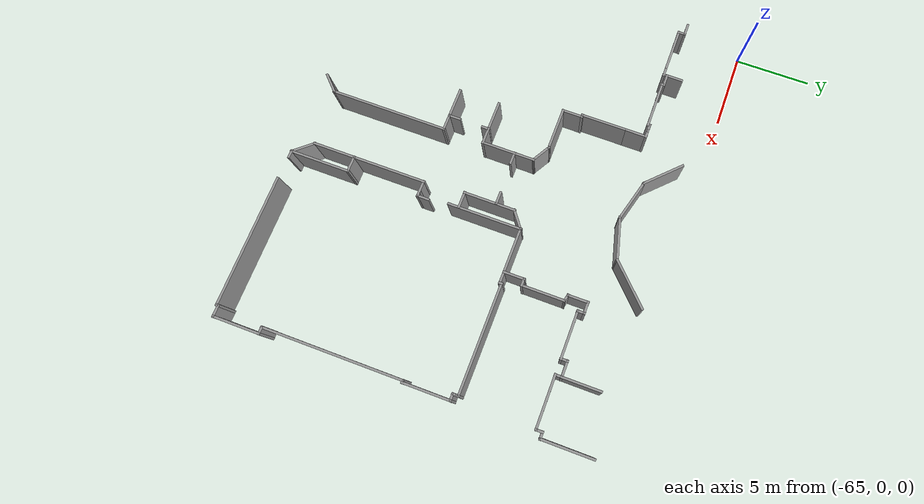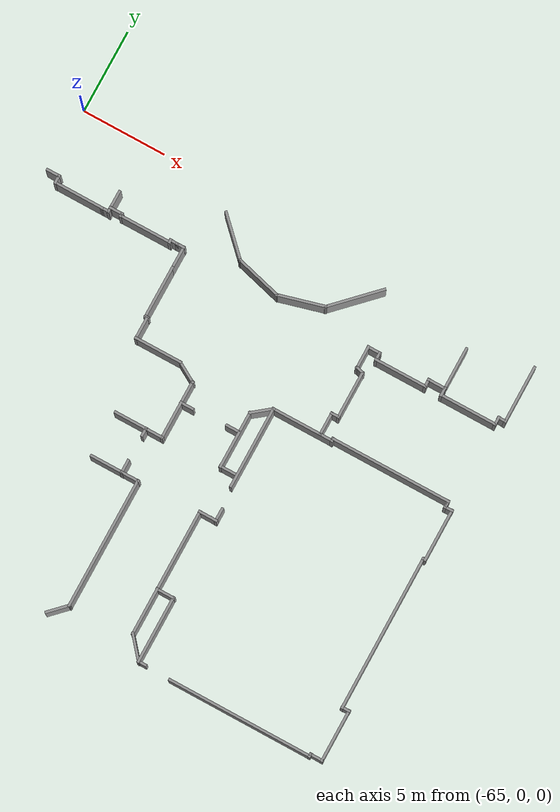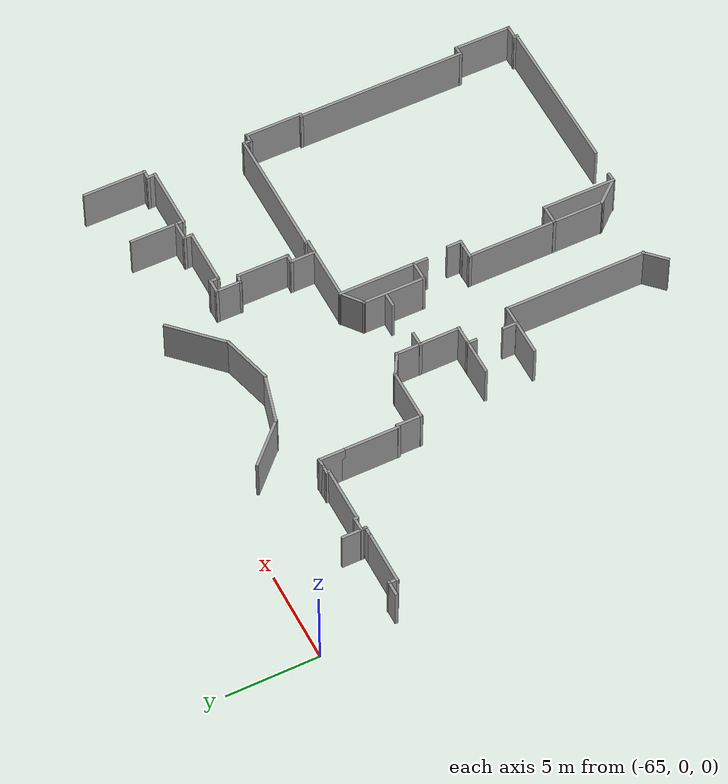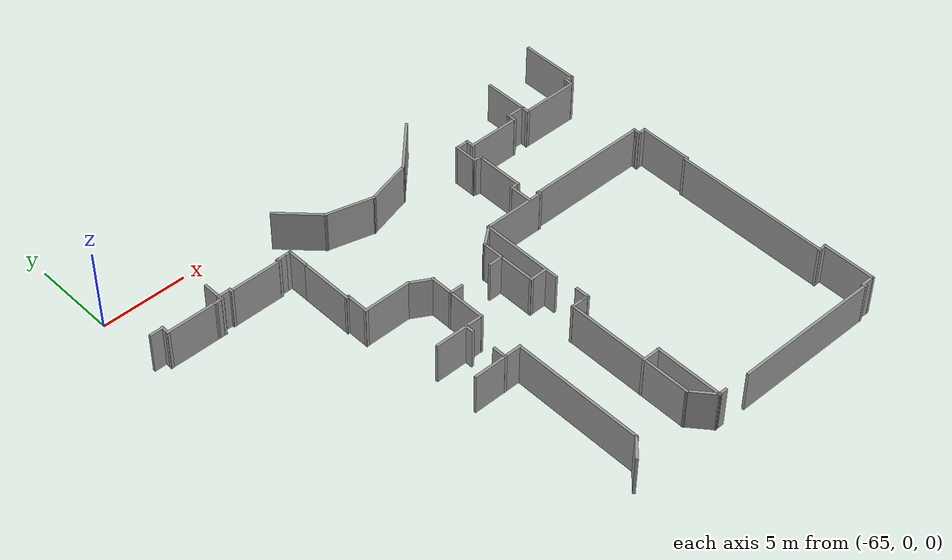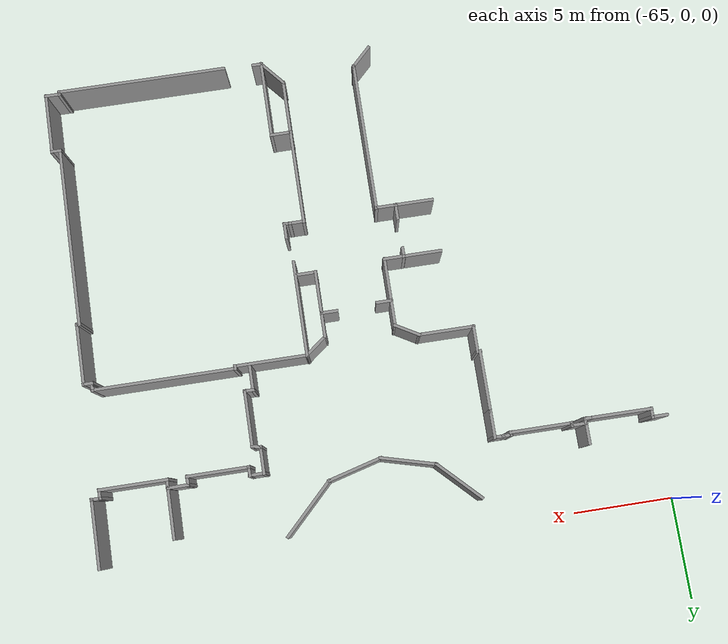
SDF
<sdf version="1.7">
 <model name="TD_n1">
  <pose>-8.28511 -2.84735 0 0 -0 0</pose>
  <link name="Wall_0">
   <collision name="Wall_0_Collision">
    <geometry><box><size>3.77 0.15 2.5</size></box></geometry>
    <pose>0 0 1.25 0 -0 0</pose>
   </collision>
   <visual name="Wall_0_Visual">
    <pose>0 0 1.25 0 -0 0</pose>
    <geometry><box><size>3.77 0.15 2.5</size></box></geometry>
    <material>
     <script><uri>file://media/materials/scripts/gazebo.material</uri><name>Gazebo/Grey</name></script>
     <ambient>1 1 1 1</ambient>
    </material>
    <meta><layer>0</layer></meta>
   </visual>
   <pose>-37.8133 -6.80732 0 0 -0 0</pose>
  </link>
  <link name="Wall_1">
   <collision name="Wall_1_Collision">
    <geometry><box><size>0.29 0.15 2.5</size></box></geometry>
    <pose>0 0 1.25 0 -0 0</pose>
   </collision>
   <visual name="Wall_1_Visual">
    <pose>0 0 1.25 0 -0 0</pose>
    <geometry><box><size>0.29 0.15 2.5</size></box></geometry>
    <material>
     <script><uri>file://media/materials/scripts/gazebo.material</uri><name>Gazebo/Grey</name></script>
     <ambient>1 1 1 1</ambient>
    </material>
    <meta><layer>0</layer></meta>
   </visual>
   <pose>-36.0153 -6.74932 0 0 -0 1.5708</pose>
  </link>
  <link name="Wall_10">
   <collision name="Wall_10_Collision">
    <geometry><box><size>0.58 0.15 2.5</size></box></geometry>
    <pose>0 0 1.25 0 -0 0</pose>
   </collision>
   <visual name="Wall_10_Visual">
    <pose>0 0 1.25 0 -0 0</pose>
    <geometry><box><size>0.58 0.15 2.5</size></box></geometry>
    <material>
     <script><uri>file://media/materials/scripts/gazebo.material</uri><name>Gazebo/Grey</name></script>
     <ambient>1 1 1 1</ambient>
    </material>
    <meta><layer>0</layer></meta>
   </visual>
   <pose>-28.4463 -19.1613 0 0 -0 0</pose>
  </link>
  <link name="Wall_102">
   <collision name="Wall_102_Collision">
    <geometry><box><size>2.9 0.15 2.5</size></box></geometry>
    <pose>0 0 1.25 0 -0 0</pose>
   </collision>
   <visual name="Wall_102_Visual">
    <pose>0 0 1.25 0 -0 0</pose>
    <geometry><box><size>2.9 0.15 2.5</size></box></geometry>
    <material>
     <script><uri>file://media/materials/scripts/gazebo.material</uri><name>Gazebo/Grey</name></script>
     <ambient>1 1 1 1</ambient>
    </material>
    <meta><layer>0</layer></meta>
   </visual>
   <pose>-43.7442 -0.919881 0 0 -0 2.87979</pose>
  </link>
  <link name="Wall_103">
   <collision name="Wall_103_Collision">
    <geometry><box><size>2.9 0.15 2.5</size></box></geometry>
    <pose>0 0 1.25 0 -0 0</pose>
   </collision>
   <visual name="Wall_103_Visual">
    <pose>0 0 1.25 0 -0 0</pose>
    <geometry><box><size>2.9 0.15 2.5</size></box></geometry>
    <material>
     <script><uri>file://media/materials/scripts/gazebo.material</uri><name>Gazebo/Grey</name></script>
     <ambient>1 1 1 1</ambient>
    </material>
    <meta><layer>0</layer></meta>
   </visual>
   <pose>-46.0245 0.396676 0 0 -0 2.35619</pose>
  </link>
  <link name="Wall_11">
   <collision name="Wall_11_Collision">
    <geometry><box><size>3.19 0.15 2.5</size></box></geometry>
    <pose>0 0 1.25 0 -0 0</pose>
   </collision>
   <visual name="Wall_11_Visual">
    <pose>0 0 1.25 0 -0 0</pose>
    <geometry><box><size>3.19 0.15 2.5</size></box></geometry>
    <material>
     <script><uri>file://media/materials/scripts/gazebo.material</uri><name>Gazebo/Grey</name></script>
     <ambient>1 1 1 1</ambient>
    </material>
    <meta><layer>0</layer></meta>
   </visual>
   <pose>-28.2433 -20.6693 0 0 -0 -1.5708</pose>
  </link>
  <link name="Wall_112">
   <collision name="Wall_112_Collision">
    <geometry><box><size>3.48 0.15 2.5</size></box></geometry>
    <pose>0 0 1.25 0 -0 0</pose>
   </collision>
   <visual name="Wall_112_Visual">
    <pose>0 0 1.25 0 -0 0</pose>
    <geometry><box><size>3.48 0.15 2.5</size></box></geometry>
    <material>
     <script><uri>file://media/materials/scripts/gazebo.material</uri><name>Gazebo/Grey</name></script>
     <ambient>1 1 1 1</ambient>
    </material>
    <meta><layer>0</layer></meta>
   </visual>
   <pose>-38.6257 0.601737 0 0 -0 -2.35619</pose>
  </link>
  <link name="Wall_113">
   <collision name="Wall_113_Collision">
    <geometry><box><size>2.9 0.15 2.5</size></box></geometry>
    <pose>0 0 1.25 0 -0 0</pose>
   </collision>
   <visual name="Wall_113_Visual">
    <pose>0 0 1.25 0 -0 0</pose>
    <geometry><box><size>2.9 0.15 2.5</size></box></geometry>
    <material>
     <script><uri>file://media/materials/scripts/gazebo.material</uri><name>Gazebo/Grey</name></script>
     <ambient>1 1 1 1</ambient>
    </material>
    <meta><layer>0</layer></meta>
   </visual>
   <pose>-41.1111 -0.919881 0 0 -0 -2.87979</pose>
  </link>
  <link name="Wall_12">
   <collision name="Wall_12_Collision">
    <geometry><box><size>0.87 0.15 2.5</size></box></geometry>
    <pose>0 0 1.25 0 -0 0</pose>
   </collision>
   <visual name="Wall_12_Visual">
    <pose>0 0 1.25 0 -0 0</pose>
    <geometry><box><size>0.87 0.15 2.5</size></box></geometry>
    <material>
     <script><uri>file://media/materials/scripts/gazebo.material</uri><name>Gazebo/Grey</name></script>
     <ambient>1 1 1 1</ambient>
    </material>
    <meta><layer>0</layer></meta>
   </visual>
   <pose>-28.5913 -22.1773 0 0 -0 3.14159</pose>
  </link>
  <link name="Wall_13">
   <collision name="Wall_13_Collision">
    <geometry><box><size>0.29 0.15 2.5</size></box></geometry>
    <pose>0 0 1.25 0 -0 0</pose>
   </collision>
   <visual name="Wall_13_Visual">
    <pose>0 0 1.25 0 -0 0</pose>
    <geometry><box><size>0.29 0.15 2.5</size></box></geometry>
    <material>
     <script><uri>file://media/materials/scripts/gazebo.material</uri><name>Gazebo/Grey</name></script>
     <ambient>1 1 1 1</ambient>
    </material>
    <meta><layer>0</layer></meta>
   </visual>
   <pose>-28.9393 -22.2353 0 0 -0 -1.5708</pose>
  </link>
  <link name="Wall_14">
   <collision name="Wall_14_Collision">
    <geometry><box><size>8.7 0.15 2.5</size></box></geometry>
    <pose>0 0 1.25 0 -0 0</pose>
   </collision>
   <visual name="Wall_14_Visual">
    <pose>0 0 1.25 0 -0 0</pose>
    <geometry><box><size>8.7 0.15 2.5</size></box></geometry>
    <material>
     <script><uri>file://media/materials/scripts/gazebo.material</uri><name>Gazebo/Grey</name></script>
     <ambient>1 1 1 1</ambient>
    </material>
    <meta><layer>0</layer></meta>
   </visual>
   <pose>-33.2023 -22.2933 0 0 -0 3.14159</pose>
  </link>
  <link name="Wall_16">
   <collision name="Wall_16_Collision">
    <geometry><box><size>0.58 0.15 2.5</size></box></geometry>
    <pose>0 0 1.25 0 -0 0</pose>
   </collision>
   <visual name="Wall_16_Visual">
    <pose>0 0 1.25 0 -0 0</pose>
    <geometry><box><size>0.58 0.15 2.5</size></box></geometry>
    <material>
     <script><uri>file://media/materials/scripts/gazebo.material</uri><name>Gazebo/Grey</name></script>
     <ambient>1 1 1 1</ambient>
    </material>
    <meta><layer>0</layer></meta>
   </visual>
   <pose>-39.2281 -22.2355 0 0 -0 3.14159</pose>
  </link>
  <link name="Wall_17">
   <collision name="Wall_17_Collision">
    <geometry><box><size>4.06 0.15 2.5</size></box></geometry>
    <pose>0 0 1.25 0 -0 0</pose>
   </collision>
   <visual name="Wall_17_Visual">
    <pose>0 0 1.25 0 -0 0</pose>
    <geometry><box><size>4.06 0.15 2.5</size></box></geometry>
    <material>
     <script><uri>file://media/materials/scripts/gazebo.material</uri><name>Gazebo/Grey</name></script>
     <ambient>1 1 1 1</ambient>
    </material>
    <meta><layer>0</layer></meta>
   </visual>
   <pose>-39.4311 -20.2925 0 0 -0 1.5708</pose>
  </link>
  <link name="Wall_179">
   <collision name="Wall_179_Collision">
    <geometry><box><size>0.87 0.15 2.5</size></box></geometry>
    <pose>0 0 1.25 0 -0 0</pose>
   </collision>
   <visual name="Wall_179_Visual">
    <pose>0 0 1.25 0 -0 0</pose>
    <geometry><box><size>0.87 0.15 2.5</size></box></geometry>
    <material>
     <script><uri>file://media/materials/scripts/gazebo.material</uri><name>Gazebo/Grey</name></script>
     <ambient>1 1 1 1</ambient>
    </material>
    <meta><layer>0</layer></meta>
   </visual>
   <pose>-56.2548 -1.23126 0 0 -0 0</pose>
  </link>
  <link name="Wall_18">
   <collision name="Wall_18_Collision">
    <geometry><box><size>1.16 0.15 2.5</size></box></geometry>
    <pose>0 0 1.25 0 -0 0</pose>
   </collision>
   <visual name="Wall_18_Visual">
    <pose>0 0 1.25 0 -0 0</pose>
    <geometry><box><size>1.16 0.15 2.5</size></box></geometry>
    <material>
     <script><uri>file://media/materials/scripts/gazebo.material</uri><name>Gazebo/Grey</name></script>
     <ambient>1 1 1 1</ambient>
    </material>
    <meta><layer>0</layer></meta>
   </visual>
   <pose>-39.9241 -18.3495 0 0 -0 3.14159</pose>
  </link>
  <link name="Wall_180">
   <collision name="Wall_180_Collision">
    <geometry><box><size>0.58 0.15 2.5</size></box></geometry>
    <pose>0 0 1.25 0 -0 0</pose>
   </collision>
   <visual name="Wall_180_Visual">
    <pose>0 0 1.25 0 -0 0</pose>
    <geometry><box><size>0.58 0.15 2.5</size></box></geometry>
    <material>
     <script><uri>file://media/materials/scripts/gazebo.material</uri><name>Gazebo/Grey</name></script>
     <ambient>1 1 1 1</ambient>
    </material>
    <meta><layer>0</layer></meta>
   </visual>
   <pose>-55.9068 -1.43426 0 0 -0 -1.5708</pose>
  </link>
  <link name="Wall_181">
   <collision name="Wall_181_Collision">
    <geometry><box><size>3.05889 0.15 2.5</size></box></geometry>
    <pose>0 0 1.25 0 -0 0</pose>
   </collision>
   <visual name="Wall_181_Visual">
    <pose>0 0 1.25 0 -0 0</pose>
    <geometry><box><size>3.05889 0.15 2.5</size></box></geometry>
    <material>
     <script><uri>file://media/materials/scripts/gazebo.material</uri><name>Gazebo/Grey</name></script>
     <ambient>1 1 1 1</ambient>
    </material>
    <meta><layer>0</layer></meta>
   </visual>
   <pose>-54.4643 -1.64229 0 0 -0 -0.003496</pose>
  </link>
  <link name="Wall_183">
   <collision name="Wall_183_Collision">
    <geometry><box><size>0.58 0.15 2.5</size></box></geometry>
    <pose>0 0 1.25 0 -0 0</pose>
   </collision>
   <visual name="Wall_183_Visual">
    <pose>0 0 1.25 0 -0 0</pose>
    <geometry><box><size>0.58 0.15 2.5</size></box></geometry>
    <material>
     <script><uri>file://media/materials/scripts/gazebo.material</uri><name>Gazebo/Grey</name></script>
     <ambient>1 1 1 1</ambient>
    </material>
    <meta><layer>0</layer></meta>
   </visual>
   <pose>-52.8139 -1.64734 0 0 -0 0</pose>
  </link>
  <link name="Wall_185">
   <collision name="Wall_185_Collision">
    <geometry><box><size>0.403324 0.15 2.5</size></box></geometry>
    <pose>0 0 1.25 0 -0 0</pose>
   </collision>
   <visual name="Wall_185_Visual">
    <pose>0 0 1.25 0 -0 0</pose>
    <geometry><box><size>0.403324 0.15 2.5</size></box></geometry>
    <material>
     <script><uri>file://media/materials/scripts/gazebo.material</uri><name>Gazebo/Grey</name></script>
     <ambient>1 1 1 1</ambient>
    </material>
    <meta><layer>0</layer></meta>
   </visual>
   <pose>-52.6163 -1.53268 0 0 -0 1.57458</pose>
  </link>
  <link name="Wall_187">
   <collision name="Wall_187_Collision">
    <geometry><box><size>2.03 0.15 2.5</size></box></geometry>
    <pose>0 0 1.25 0 -0 0</pose>
   </collision>
   <visual name="Wall_187_Visual">
    <pose>0 0 1.25 0 -0 0</pose>
    <geometry><box><size>2.03 0.15 2.5</size></box></geometry>
    <material>
     <script><uri>file://media/materials/scripts/gazebo.material</uri><name>Gazebo/Grey</name></script>
     <ambient>1 1 1 1</ambient>
    </material>
    <meta><layer>0</layer></meta>
   </visual>
   <pose>-46.063 -13.7337 0 0 -0 3.14159</pose>
  </link>
  <link name="Wall_189">
   <collision name="Wall_189_Collision">
    <geometry><box><size>2.03 0.15 2.5</size></box></geometry>
    <pose>0 0 1.25 0 -0 0</pose>
   </collision>
   <visual name="Wall_189_Visual">
    <pose>0 0 1.25 0 -0 0</pose>
    <geometry><box><size>2.03 0.15 2.5</size></box></geometry>
    <material>
     <script><uri>file://media/materials/scripts/gazebo.material</uri><name>Gazebo/Grey</name></script>
     <ambient>1 1 1 1</ambient>
    </material>
    <meta><layer>0</layer></meta>
   </visual>
   <pose>-46.0598 -11.046 0 0 -0 3.14159</pose>
  </link>
  <link name="Wall_19">
   <collision name="Wall_19_Collision">
    <geometry><box><size>2.9 0.15 2.5</size></box></geometry>
    <pose>0 0 1.25 0 -0 0</pose>
   </collision>
   <visual name="Wall_19_Visual">
    <pose>0 0 1.25 0 -0 0</pose>
    <geometry><box><size>2.9 0.15 2.5</size></box></geometry>
    <material>
     <script><uri>file://media/materials/scripts/gazebo.material</uri><name>Gazebo/Grey</name></script>
     <ambient>1 1 1 1</ambient>
    </material>
    <meta><layer>0</layer></meta>
   </visual>
   <pose>-40.4171 -19.7125 0 0 -0 -1.5708</pose>
  </link>
  <link name="Wall_2">
   <collision name="Wall_2_Collision">
    <geometry><box><size>7.25 0.15 2.5</size></box></geometry>
    <pose>0 0 1.25 0 -0 0</pose>
   </collision>
   <visual name="Wall_2_Visual">
    <pose>0 0 1.25 0 -0 0</pose>
    <geometry><box><size>7.25 0.15 2.5</size></box></geometry>
    <material>
     <script><uri>file://media/materials/scripts/gazebo.material</uri><name>Gazebo/Grey</name></script>
     <ambient>1 1 1 1</ambient>
    </material>
    <meta><layer>0</layer></meta>
   </visual>
   <pose>-32.4773 -6.69132 0 0 -0 0</pose>
  </link>
  <link name="Wall_20">
   <collision name="Wall_20_Collision">
    <geometry><box><size>1.69643 0.15 2.5</size></box></geometry>
    <pose>0 0 1.25 0 -0 0</pose>
   </collision>
   <visual name="Wall_20_Visual">
    <pose>0 0 1.25 0 -0 0</pose>
    <geometry><box><size>1.69643 0.15 2.5</size></box></geometry>
    <material>
     <script><uri>file://media/materials/scripts/gazebo.material</uri><name>Gazebo/Grey</name></script>
     <ambient>1 1 1 1</ambient>
    </material>
    <meta><layer>0</layer></meta>
   </visual>
   <pose>-39.9241 -21.6555 0 0 -0 -0.866302</pose>
  </link>
  <link name="Wall_22">
   <collision name="Wall_22_Collision">
    <geometry><box><size>4.93 0.15 2.5</size></box></geometry>
    <pose>0 0 1.25 0 -0 0</pose>
   </collision>
   <visual name="Wall_22_Visual">
    <pose>0 0 1.25 0 -0 0</pose>
    <geometry><box><size>4.93 0.15 2.5</size></box></geometry>
    <material>
     <script><uri>file://media/materials/scripts/gazebo.material</uri><name>Gazebo/Grey</name></script>
     <ambient>1 1 1 1</ambient>
    </material>
    <meta><layer>0</layer></meta>
   </visual>
   <pose>-40.4171 -15.9715 0 0 -0 1.5708</pose>
  </link>
  <link name="Wall_24">
   <collision name="Wall_24_Collision">
    <geometry><box><size>0.174 0.15 2.5</size></box></geometry>
    <pose>0 0 1.25 0 -0 0</pose>
   </collision>
   <visual name="Wall_24_Visual">
    <pose>0 0 1.25 0 -0 0</pose>
    <geometry><box><size>0.174 0.15 2.5</size></box></geometry>
    <material>
     <script><uri>file://media/materials/scripts/gazebo.material</uri><name>Gazebo/Grey</name></script>
     <ambient>1 1 1 1</ambient>
    </material>
    <meta><layer>0</layer></meta>
   </visual>
   <pose>-39.7046 -13.5836 0 0 -0 0</pose>
  </link>
  <link name="Wall_28">
   <collision name="Wall_28_Collision">
    <geometry><box><size>1.16 0.15 2.5</size></box></geometry>
    <pose>0 0 1.25 0 -0 0</pose>
   </collision>
   <visual name="Wall_28_Visual">
    <pose>0 0 1.25 0 -0 0</pose>
    <geometry><box><size>1.16 0.15 2.5</size></box></geometry>
    <material>
     <script><uri>file://media/materials/scripts/gazebo.material</uri><name>Gazebo/Grey</name></script>
     <ambient>1 1 1 1</ambient>
    </material>
    <meta><layer>0</layer></meta>
   </visual>
   <pose>-39.9241 -13.5935 0 0 -0 0</pose>
  </link>
  <link name="Wall_29">
   <collision name="Wall_29_Collision">
    <geometry><box><size>0.87 0.15 2.5</size></box></geometry>
    <pose>0 0 1.25 0 -0 0</pose>
   </collision>
   <visual name="Wall_29_Visual">
    <pose>0 0 1.25 0 -0 0</pose>
    <geometry><box><size>0.87 0.15 2.5</size></box></geometry>
    <material>
     <script><uri>file://media/materials/scripts/gazebo.material</uri><name>Gazebo/Grey</name></script>
     <ambient>1 1 1 1</ambient>
    </material>
    <meta><layer>0</layer></meta>
   </visual>
   <pose>-39.4311 -13.2455 0 0 -0 1.5708</pose>
  </link>
  <link name="Wall_3">
   <collision name="Wall_3_Collision">
    <geometry><box><size>0.29 0.15 2.5</size></box></geometry>
    <pose>0 0 1.25 0 -0 0</pose>
   </collision>
   <visual name="Wall_3_Visual">
    <pose>0 0 1.25 0 -0 0</pose>
    <geometry><box><size>0.29 0.15 2.5</size></box></geometry>
    <material>
     <script><uri>file://media/materials/scripts/gazebo.material</uri><name>Gazebo/Grey</name></script>
     <ambient>1 1 1 1</ambient>
    </material>
    <meta><layer>0</layer></meta>
   </visual>
   <pose>-28.9393 -6.74932 0 0 -0 -1.5708</pose>
  </link>
  <link name="Wall_31">
   <collision name="Wall_31_Collision">
    <geometry><box><size>4.93 0.15 2.5</size></box></geometry>
    <pose>0 0 1.25 0 -0 0</pose>
   </collision>
   <visual name="Wall_31_Visual">
    <pose>0 0 1.25 0 -0 0</pose>
    <geometry><box><size>4.93 0.15 2.5</size></box></geometry>
    <material>
     <script><uri>file://media/materials/scripts/gazebo.material</uri><name>Gazebo/Grey</name></script>
     <ambient>1 1 1 1</ambient>
    </material>
    <meta><layer>0</layer></meta>
   </visual>
   <pose>-39.6113 -9.18532 0 0 -0 -1.5708</pose>
  </link>
  <link name="Wall_33">
   <collision name="Wall_33_Collision">
    <geometry><box><size>1.16 0.15 2.5</size></box></geometry>
    <pose>0 0 1.25 0 -0 0</pose>
   </collision>
   <visual name="Wall_33_Visual">
    <pose>0 0 1.25 0 -0 0</pose>
    <geometry><box><size>1.16 0.15 2.5</size></box></geometry>
    <material>
     <script><uri>file://media/materials/scripts/gazebo.material</uri><name>Gazebo/Grey</name></script>
     <ambient>1 1 1 1</ambient>
    </material>
    <meta><layer>0</layer></meta>
   </visual>
   <pose>-40.126 -10.9024 0 0 -0 3.14159</pose>
  </link>
  <link name="Wall_34">
   <collision name="Wall_34_Collision">
    <geometry><box><size>3.48 0.15 2.5</size></box></geometry>
    <pose>0 0 1.25 0 -0 0</pose>
   </collision>
   <visual name="Wall_34_Visual">
    <pose>0 0 1.25 0 -0 0</pose>
    <geometry><box><size>3.48 0.15 2.5</size></box></geometry>
    <material>
     <script><uri>file://media/materials/scripts/gazebo.material</uri><name>Gazebo/Grey</name></script>
     <ambient>1 1 1 1</ambient>
    </material>
    <meta><layer>0</layer></meta>
   </visual>
   <pose>-40.619 -9.24941 0 0 -0 1.5708</pose>
  </link>
  <link name="Wall_35">
   <collision name="Wall_35_Collision">
    <geometry><box><size>1.45387 0.15 2.5</size></box></geometry>
    <pose>0 0 1.25 0 -0 0</pose>
   </collision>
   <visual name="Wall_35_Visual">
    <pose>0 0 1.25 0 -0 0</pose>
    <geometry><box><size>1.45387 0.15 2.5</size></box></geometry>
    <material>
     <script><uri>file://media/materials/scripts/gazebo.material</uri><name>Gazebo/Grey</name></script>
     <ambient>1 1 1 1</ambient>
    </material>
    <meta><layer>0</layer></meta>
   </visual>
   <pose>-40.1152 -7.20187 0 0 -0 0.664339</pose>
  </link>
  <link name="Wall_38">
   <collision name="Wall_38_Collision">
    <geometry><box><size>1.45 0.15 2.5</size></box></geometry>
    <pose>0 0 1.25 0 -0 0</pose>
   </collision>
   <visual name="Wall_38_Visual">
    <pose>0 0 1.25 0 -0 0</pose>
    <geometry><box><size>1.45 0.15 2.5</size></box></geometry>
    <material>
     <script><uri>file://media/materials/scripts/gazebo.material</uri><name>Gazebo/Grey</name></script>
     <ambient>1 1 1 1</ambient>
    </material>
    <meta><layer>0</layer></meta>
   </visual>
   <pose>-44.6001 -21.8408 0 0 -0 0.785398</pose>
  </link>
  <link name="Wall_39">
   <collision name="Wall_39_Collision">
    <geometry><box><size>7.83 0.15 2.5</size></box></geometry>
    <pose>0 0 1.25 0 -0 0</pose>
   </collision>
   <visual name="Wall_39_Visual">
    <pose>0 0 1.25 0 -0 0</pose>
    <geometry><box><size>7.83 0.15 2.5</size></box></geometry>
    <material>
     <script><uri>file://media/materials/scripts/gazebo.material</uri><name>Gazebo/Grey</name></script>
     <ambient>1 1 1 1</ambient>
    </material>
    <meta><layer>0</layer></meta>
   </visual>
   <pose>-44.149 -17.5617 0 0 -0 1.5708</pose>
  </link>
  <link name="Wall_4">
   <collision name="Wall_4_Collision">
    <geometry><box><size>0.29 0.15 2.5</size></box></geometry>
    <pose>0 0 1.25 0 -0 0</pose>
   </collision>
   <visual name="Wall_4_Visual">
    <pose>0 0 1.25 0 -0 0</pose>
    <geometry><box><size>0.29 0.15 2.5</size></box></geometry>
    <material>
     <script><uri>file://media/materials/scripts/gazebo.material</uri><name>Gazebo/Grey</name></script>
     <ambient>1 1 1 1</ambient>
    </material>
    <meta><layer>0</layer></meta>
   </visual>
   <pose>-28.9393 -6.86532 0 0 -0 -1.5708</pose>
  </link>
  <link name="Wall_40">
   <collision name="Wall_40_Collision">
    <geometry><box><size>1.16 0.15 2.5</size></box></geometry>
    <pose>0 0 1.25 0 -0 0</pose>
   </collision>
   <visual name="Wall_40_Visual">
    <pose>0 0 1.25 0 -0 0</pose>
    <geometry><box><size>1.16 0.15 2.5</size></box></geometry>
    <material>
     <script><uri>file://media/materials/scripts/gazebo.material</uri><name>Gazebo/Grey</name></script>
     <ambient>1 1 1 1</ambient>
    </material>
    <meta><layer>0</layer></meta>
   </visual>
   <pose>-44.642 -13.7337 0 0 -0 3.14159</pose>
  </link>
  <link name="Wall_41">
   <collision name="Wall_41_Collision">
    <geometry><box><size>0.87 0.15 2.5</size></box></geometry>
    <pose>0 0 1.25 0 -0 0</pose>
   </collision>
   <visual name="Wall_41_Visual">
    <pose>0 0 1.25 0 -0 0</pose>
    <geometry><box><size>0.87 0.15 2.5</size></box></geometry>
    <material>
     <script><uri>file://media/materials/scripts/gazebo.material</uri><name>Gazebo/Grey</name></script>
     <ambient>1 1 1 1</ambient>
    </material>
    <meta><layer>0</layer></meta>
   </visual>
   <pose>-45.135 -13.3857 0 0 -0 1.5708</pose>
  </link>
  <link name="Wall_45">
   <collision name="Wall_45_Collision">
    <geometry><box><size>0.58 0.15 2.5</size></box></geometry>
    <pose>0 0 1.25 0 -0 0</pose>
   </collision>
   <visual name="Wall_45_Visual">
    <pose>0 0 1.25 0 -0 0</pose>
    <geometry><box><size>0.58 0.15 2.5</size></box></geometry>
    <material>
     <script><uri>file://media/materials/scripts/gazebo.material</uri><name>Gazebo/Grey</name></script>
     <ambient>1 1 1 1</ambient>
    </material>
    <meta><layer>0</layer></meta>
   </visual>
   <pose>-45.1318 -11.249 0 0 -0 1.5708</pose>
  </link>
  <link name="Wall_46">
   <collision name="Wall_46_Collision">
    <geometry><box><size>1.16 0.15 2.5</size></box></geometry>
    <pose>0 0 1.25 0 -0 0</pose>
   </collision>
   <visual name="Wall_46_Visual">
    <pose>0 0 1.25 0 -0 0</pose>
    <geometry><box><size>1.16 0.15 2.5</size></box></geometry>
    <material>
     <script><uri>file://media/materials/scripts/gazebo.material</uri><name>Gazebo/Grey</name></script>
     <ambient>1 1 1 1</ambient>
    </material>
    <meta><layer>0</layer></meta>
   </visual>
   <pose>-44.6388 -11.046 0 0 -0 0</pose>
  </link>
  <link name="Wall_47">
   <collision name="Wall_47_Collision">
    <geometry><box><size>2.32 0.15 2.5</size></box></geometry>
    <pose>0 0 1.25 0 -0 0</pose>
   </collision>
   <visual name="Wall_47_Visual">
    <pose>0 0 1.25 0 -0 0</pose>
    <geometry><box><size>2.32 0.15 2.5</size></box></geometry>
    <material>
     <script><uri>file://media/materials/scripts/gazebo.material</uri><name>Gazebo/Grey</name></script>
     <ambient>1 1 1 1</ambient>
    </material>
    <meta><layer>0</layer></meta>
   </visual>
   <pose>-44.1458 -9.97302 0 0 -0 1.5708</pose>
  </link>
  <link name="Wall_48">
   <collision name="Wall_48_Collision">
    <geometry><box><size>0.87 0.15 2.5</size></box></geometry>
    <pose>0 0 1.25 0 -0 0</pose>
   </collision>
   <visual name="Wall_48_Visual">
    <pose>0 0 1.25 0 -0 0</pose>
    <geometry><box><size>0.87 0.15 2.5</size></box></geometry>
    <material>
     <script><uri>file://media/materials/scripts/gazebo.material</uri><name>Gazebo/Grey</name></script>
     <ambient>1 1 1 1</ambient>
    </material>
    <meta><layer>0</layer></meta>
   </visual>
   <pose>-43.7978 -8.90002 0 0 -0 0</pose>
  </link>
  <link name="Wall_5">
   <collision name="Wall_5_Collision">
    <geometry><box><size>0.29 0.15 2.5</size></box></geometry>
    <pose>0 0 1.25 0 -0 0</pose>
   </collision>
   <visual name="Wall_5_Visual">
    <pose>0 0 1.25 0 -0 0</pose>
    <geometry><box><size>0.29 0.15 2.5</size></box></geometry>
    <material>
     <script><uri>file://media/materials/scripts/gazebo.material</uri><name>Gazebo/Grey</name></script>
     <ambient>1 1 1 1</ambient>
    </material>
    <meta><layer>0</layer></meta>
   </visual>
   <pose>-28.9393 -6.98132 0 0 -0 -1.5708</pose>
  </link>
  <link name="Wall_50">
   <collision name="Wall_50_Collision">
    <geometry><box><size>0.87 0.15 2.5</size></box></geometry>
    <pose>0 0 1.25 0 -0 0</pose>
   </collision>
   <visual name="Wall_50_Visual">
    <pose>0 0 1.25 0 -0 0</pose>
    <geometry><box><size>0.87 0.15 2.5</size></box></geometry>
    <material>
     <script><uri>file://media/materials/scripts/gazebo.material</uri><name>Gazebo/Grey</name></script>
     <ambient>1 1 1 1</ambient>
    </material>
    <meta><layer>0</layer></meta>
   </visual>
   <pose>-41.0273 -8.7957 0 0 -0 0</pose>
  </link>
  <link name="Wall_52">
   <collision name="Wall_52_Collision">
    <geometry><box><size>1.45 0.15 2.5</size></box></geometry>
    <pose>0 0 1.25 0 -0 0</pose>
   </collision>
   <visual name="Wall_52_Visual">
    <pose>0 0 1.25 0 -0 0</pose>
    <geometry><box><size>1.45 0.15 2.5</size></box></geometry>
    <material>
     <script><uri>file://media/materials/scripts/gazebo.material</uri><name>Gazebo/Grey</name></script>
     <ambient>1 1 1 1</ambient>
    </material>
    <meta><layer>0</layer></meta>
   </visual>
   <pose>-44.1458 -8.26202 0 0 -0 1.5708</pose>
  </link>
  <link name="Wall_53">
   <collision name="Wall_53_Collision">
    <geometry><box><size>1.45 0.15 2.5</size></box></geometry>
    <pose>0 0 1.25 0 -0 0</pose>
   </collision>
   <visual name="Wall_53_Visual">
    <pose>0 0 1.25 0 -0 0</pose>
    <geometry><box><size>1.45 0.15 2.5</size></box></geometry>
    <material>
     <script><uri>file://media/materials/scripts/gazebo.material</uri><name>Gazebo/Grey</name></script>
     <ambient>1 1 1 1</ambient>
    </material>
    <meta><layer>0</layer></meta>
   </visual>
   <pose>-44.6983 -7.30502 0 0 -0 2.61799</pose>
  </link>
  <link name="Wall_54">
   <collision name="Wall_54_Collision">
    <geometry><box><size>2.9 0.15 2.5</size></box></geometry>
    <pose>0 0 1.25 0 -0 0</pose>
   </collision>
   <visual name="Wall_54_Visual">
    <pose>0 0 1.25 0 -0 0</pose>
    <geometry><box><size>2.9 0.15 2.5</size></box></geometry>
    <material>
     <script><uri>file://media/materials/scripts/gazebo.material</uri><name>Gazebo/Grey</name></script>
     <ambient>1 1 1 1</ambient>
    </material>
    <meta><layer>0</layer></meta>
   </visual>
   <pose>-46.6138 -6.98602 0 0 -0 3.14159</pose>
  </link>
  <link name="Wall_55">
   <collision name="Wall_55_Collision">
    <geometry><box><size>1.45 0.15 2.5</size></box></geometry>
    <pose>0 0 1.25 0 -0 0</pose>
   </collision>
   <visual name="Wall_55_Visual">
    <pose>0 0 1.25 0 -0 0</pose>
    <geometry><box><size>1.45 0.15 2.5</size></box></geometry>
    <material>
     <script><uri>file://media/materials/scripts/gazebo.material</uri><name>Gazebo/Grey</name></script>
     <ambient>1 1 1 1</ambient>
    </material>
    <meta><layer>0</layer></meta>
   </visual>
   <pose>-47.9768 -6.34802 0 0 -0 1.5708</pose>
  </link>
  <link name="Wall_56">
   <collision name="Wall_56_Collision">
    <geometry><box><size>0.29 0.15 2.5</size></box></geometry>
    <pose>0 0 1.25 0 -0 0</pose>
   </collision>
   <visual name="Wall_56_Visual">
    <pose>0 0 1.25 0 -0 0</pose>
    <geometry><box><size>0.29 0.15 2.5</size></box></geometry>
    <material>
     <script><uri>file://media/materials/scripts/gazebo.material</uri><name>Gazebo/Grey</name></script>
     <ambient>1 1 1 1</ambient>
    </material>
    <meta><layer>0</layer></meta>
   </visual>
   <pose>-48.0348 -5.71002 0 0 -0 3.14159</pose>
  </link>
  <link name="Wall_57">
   <collision name="Wall_57_Collision">
    <geometry><box><size>3.19 0.15 2.5</size></box></geometry>
    <pose>0 0 1.25 0 -0 0</pose>
   </collision>
   <visual name="Wall_57_Visual">
    <pose>0 0 1.25 0 -0 0</pose>
    <geometry><box><size>3.19 0.15 2.5</size></box></geometry>
    <material>
     <script><uri>file://media/materials/scripts/gazebo.material</uri><name>Gazebo/Grey</name></script>
     <ambient>1 1 1 1</ambient>
    </material>
    <meta><layer>0</layer></meta>
   </visual>
   <pose>-48.0928 -4.20202 0 0 -0 1.5708</pose>
  </link>
  <link name="Wall_58">
   <collision name="Wall_58_Collision">
    <geometry><box><size>1.45 0.15 2.5</size></box></geometry>
    <pose>0 0 1.25 0 -0 0</pose>
   </collision>
   <visual name="Wall_58_Visual">
    <pose>0 0 1.25 0 -0 0</pose>
    <geometry><box><size>1.45 0.15 2.5</size></box></geometry>
    <material>
     <script><uri>file://media/materials/scripts/gazebo.material</uri><name>Gazebo/Grey</name></script>
     <ambient>1 1 1 1</ambient>
    </material>
    <meta><layer>0</layer></meta>
   </visual>
   <pose>-48.0928 -2.05602 0 0 -0 1.5708</pose>
  </link>
  <link name="Wall_59">
   <collision name="Wall_59_Collision">
    <geometry><box><size>0.58 0.15 2.5</size></box></geometry>
    <pose>0 0 1.25 0 -0 0</pose>
   </collision>
   <visual name="Wall_59_Visual">
    <pose>0 0 1.25 0 -0 0</pose>
    <geometry><box><size>0.58 0.15 2.5</size></box></geometry>
    <material>
     <script><uri>file://media/materials/scripts/gazebo.material</uri><name>Gazebo/Grey</name></script>
     <ambient>1 1 1 1</ambient>
    </material>
    <meta><layer>0</layer></meta>
   </visual>
   <pose>-48.2958 -1.41802 0 0 -0 3.14159</pose>
  </link>
  <link name="Wall_6">
   <collision name="Wall_6_Collision">
    <geometry><box><size>0.58 0.15 2.5</size></box></geometry>
    <pose>0 0 1.25 0 -0 0</pose>
   </collision>
   <visual name="Wall_6_Visual">
    <pose>0 0 1.25 0 -0 0</pose>
    <geometry><box><size>0.58 0.15 2.5</size></box></geometry>
    <material>
     <script><uri>file://media/materials/scripts/gazebo.material</uri><name>Gazebo/Grey</name></script>
     <ambient>1 1 1 1</ambient>
    </material>
    <meta><layer>0</layer></meta>
   </visual>
   <pose>-28.7363 -7.03932 0 0 -0 0</pose>
  </link>
  <link name="Wall_60">
   <collision name="Wall_60_Collision">
    <geometry><box><size>0.58 0.15 2.5</size></box></geometry>
    <pose>0 0 1.25 0 -0 0</pose>
   </collision>
   <visual name="Wall_60_Visual">
    <pose>0 0 1.25 0 -0 0</pose>
    <geometry><box><size>0.58 0.15 2.5</size></box></geometry>
    <material>
     <script><uri>file://media/materials/scripts/gazebo.material</uri><name>Gazebo/Grey</name></script>
     <ambient>1 1 1 1</ambient>
    </material>
    <meta><layer>0</layer></meta>
   </visual>
   <pose>-48.7018 -1.41802 0 0 -0 3.14159</pose>
  </link>
  <link name="Wall_61">
   <collision name="Wall_61_Collision">
    <geometry><box><size>0.29 0.15 2.5</size></box></geometry>
    <pose>0 0 1.25 0 -0 0</pose>
   </collision>
   <visual name="Wall_61_Visual">
    <pose>0 0 1.25 0 -0 0</pose>
    <geometry><box><size>0.29 0.15 2.5</size></box></geometry>
    <material>
     <script><uri>file://media/materials/scripts/gazebo.material</uri><name>Gazebo/Grey</name></script>
     <ambient>1 1 1 1</ambient>
    </material>
    <meta><layer>0</layer></meta>
   </visual>
   <pose>-48.9048 -1.47602 0 0 -0 -1.5708</pose>
  </link>
  <link name="Wall_62">
   <collision name="Wall_62_Collision">
    <geometry><box><size>3.19 0.15 2.5</size></box></geometry>
    <pose>0 0 1.25 0 -0 0</pose>
   </collision>
   <visual name="Wall_62_Visual">
    <pose>0 0 1.25 0 -0 0</pose>
    <geometry><box><size>3.19 0.15 2.5</size></box></geometry>
    <material>
     <script><uri>file://media/materials/scripts/gazebo.material</uri><name>Gazebo/Grey</name></script>
     <ambient>1 1 1 1</ambient>
    </material>
    <meta><layer>0</layer></meta>
   </visual>
   <pose>-50.4128 -1.53402 0 0 -0 3.14159</pose>
  </link>
  <link name="Wall_63">
   <collision name="Wall_63_Collision">
    <geometry><box><size>0.29 0.15 2.5</size></box></geometry>
    <pose>0 0 1.25 0 -0 0</pose>
   </collision>
   <visual name="Wall_63_Visual">
    <pose>0 0 1.25 0 -0 0</pose>
    <geometry><box><size>0.29 0.15 2.5</size></box></geometry>
    <material>
     <script><uri>file://media/materials/scripts/gazebo.material</uri><name>Gazebo/Grey</name></script>
     <ambient>1 1 1 1</ambient>
    </material>
    <meta><layer>0</layer></meta>
   </visual>
   <pose>-51.9208 -1.47602 0 0 -0 1.5708</pose>
  </link>
  <link name="Wall_64">
   <collision name="Wall_64_Collision">
    <geometry><box><size>0.87 0.15 2.5</size></box></geometry>
    <pose>0 0 1.25 0 -0 0</pose>
   </collision>
   <visual name="Wall_64_Visual">
    <pose>0 0 1.25 0 -0 0</pose>
    <geometry><box><size>0.87 0.15 2.5</size></box></geometry>
    <material>
     <script><uri>file://media/materials/scripts/gazebo.material</uri><name>Gazebo/Grey</name></script>
     <ambient>1 1 1 1</ambient>
    </material>
    <meta><layer>0</layer></meta>
   </visual>
   <pose>-52.2688 -1.41802 0 0 -0 3.14159</pose>
  </link>
  <link name="Wall_65">
   <collision name="Wall_65_Collision">
    <geometry><box><size>1.16 0.15 2.5</size></box></geometry>
    <pose>0 0 1.25 0 -0 0</pose>
   </collision>
   <visual name="Wall_65_Visual">
    <pose>0 0 1.25 0 -0 0</pose>
    <geometry><box><size>1.16 0.15 2.5</size></box></geometry>
    <material>
     <script><uri>file://media/materials/scripts/gazebo.material</uri><name>Gazebo/Grey</name></script>
     <ambient>1 1 1 1</ambient>
    </material>
    <meta><layer>0</layer></meta>
   </visual>
   <pose>-52.6168 -0.925019 0 0 -0 1.5708</pose>
  </link>
  <link name="Wall_69">
   <collision name="Wall_69_Collision">
    <geometry><box><size>1.45 0.15 2.5</size></box></geometry>
    <pose>0 0 1.25 0 -0 0</pose>
   </collision>
   <visual name="Wall_69_Visual">
    <pose>0 0 1.25 0 -0 0</pose>
    <geometry><box><size>1.45 0.15 2.5</size></box></geometry>
    <material>
     <script><uri>file://media/materials/scripts/gazebo.material</uri><name>Gazebo/Grey</name></script>
     <ambient>1 1 1 1</ambient>
    </material>
    <meta><layer>0</layer></meta>
   </visual>
   <pose>-36.7335 -6.14533 0 0 -0 1.5708</pose>
  </link>
  <link name="Wall_7">
   <collision name="Wall_7_Collision">
    <geometry><box><size>3.19 0.15 2.5</size></box></geometry>
    <pose>0 0 1.25 0 -0 0</pose>
   </collision>
   <visual name="Wall_7_Visual">
    <pose>0 0 1.25 0 -0 0</pose>
    <geometry><box><size>3.19 0.15 2.5</size></box></geometry>
    <material>
     <script><uri>file://media/materials/scripts/gazebo.material</uri><name>Gazebo/Grey</name></script>
     <ambient>1 1 1 1</ambient>
    </material>
    <meta><layer>0</layer></meta>
   </visual>
   <pose>-28.5333 -8.54732 0 0 -0 -1.5708</pose>
  </link>
  <link name="Wall_70">
   <collision name="Wall_70_Collision">
    <geometry><box><size>0.58 0.15 2.5</size></box></geometry>
    <pose>0 0 1.25 0 -0 0</pose>
   </collision>
   <visual name="Wall_70_Visual">
    <pose>0 0 1.25 0 -0 0</pose>
    <geometry><box><size>0.58 0.15 2.5</size></box></geometry>
    <material>
     <script><uri>file://media/materials/scripts/gazebo.material</uri><name>Gazebo/Grey</name></script>
     <ambient>1 1 1 1</ambient>
    </material>
    <meta><layer>0</layer></meta>
   </visual>
   <pose>-36.5305 -5.50733 0 0 -0 0</pose>
  </link>
  <link name="Wall_71">
   <collision name="Wall_71_Collision">
    <geometry><box><size>2.9 0.15 2.5</size></box></geometry>
    <pose>0 0 1.25 0 -0 0</pose>
   </collision>
   <visual name="Wall_71_Visual">
    <pose>0 0 1.25 0 -0 0</pose>
    <geometry><box><size>2.9 0.15 2.5</size></box></geometry>
    <material>
     <script><uri>file://media/materials/scripts/gazebo.material</uri><name>Gazebo/Grey</name></script>
     <ambient>1 1 1 1</ambient>
    </material>
    <meta><layer>0</layer></meta>
   </visual>
   <pose>-36.3275 -4.14433 0 0 -0 1.5708</pose>
  </link>
  <link name="Wall_72">
   <collision name="Wall_72_Collision">
    <geometry><box><size>0.58 0.15 2.5</size></box></geometry>
    <pose>0 0 1.25 0 -0 0</pose>
   </collision>
   <visual name="Wall_72_Visual">
    <pose>0 0 1.25 0 -0 0</pose>
    <geometry><box><size>0.58 0.15 2.5</size></box></geometry>
    <material>
     <script><uri>file://media/materials/scripts/gazebo.material</uri><name>Gazebo/Grey</name></script>
     <ambient>1 1 1 1</ambient>
    </material>
    <meta><layer>0</layer></meta>
   </visual>
   <pose>-36.5235 -2.7288 0 0 -0 2.87979</pose>
  </link>
  <link name="Wall_73">
   <collision name="Wall_73_Collision">
    <geometry><box><size>1.45 0.15 2.5</size></box></geometry>
    <pose>0 0 1.25 0 -0 0</pose>
   </collision>
   <visual name="Wall_73_Visual">
    <pose>0 0 1.25 0 -0 0</pose>
    <geometry><box><size>1.45 0.15 2.5</size></box></geometry>
    <material>
     <script><uri>file://media/materials/scripts/gazebo.material</uri><name>Gazebo/Grey</name></script>
     <ambient>1 1 1 1</ambient>
    </material>
    <meta><layer>0</layer></meta>
   </visual>
   <pose>-36.7197 -2.03826 0 0 -0 1.5708</pose>
  </link>
  <link name="Wall_74">
   <collision name="Wall_74_Collision">
    <geometry><box><size>0.87 0.15 2.5</size></box></geometry>
    <pose>0 0 1.25 0 -0 0</pose>
   </collision>
   <visual name="Wall_74_Visual">
    <pose>0 0 1.25 0 -0 0</pose>
    <geometry><box><size>0.87 0.15 2.5</size></box></geometry>
    <material>
     <script><uri>file://media/materials/scripts/gazebo.material</uri><name>Gazebo/Grey</name></script>
     <ambient>1 1 1 1</ambient>
    </material>
    <meta><layer>0</layer></meta>
   </visual>
   <pose>-36.3717 -1.40026 0 0 -0 0</pose>
  </link>
  <link name="Wall_75">
   <collision name="Wall_75_Collision">
    <geometry><box><size>0.58 0.15 2.5</size></box></geometry>
    <pose>0 0 1.25 0 -0 0</pose>
   </collision>
   <visual name="Wall_75_Visual">
    <pose>0 0 1.25 0 -0 0</pose>
    <geometry><box><size>0.58 0.15 2.5</size></box></geometry>
    <material>
     <script><uri>file://media/materials/scripts/gazebo.material</uri><name>Gazebo/Grey</name></script>
     <ambient>1 1 1 1</ambient>
    </material>
    <meta><layer>0</layer></meta>
   </visual>
   <pose>-36.0237 -1.60326 0 0 -0 -1.5708</pose>
  </link>
  <link name="Wall_76">
   <collision name="Wall_76_Collision">
    <geometry><box><size>3.19 0.15 2.5</size></box></geometry>
    <pose>0 0 1.25 0 -0 0</pose>
   </collision>
   <visual name="Wall_76_Visual">
    <pose>0 0 1.25 0 -0 0</pose>
    <geometry><box><size>3.19 0.15 2.5</size></box></geometry>
    <material>
     <script><uri>file://media/materials/scripts/gazebo.material</uri><name>Gazebo/Grey</name></script>
     <ambient>1 1 1 1</ambient>
    </material>
    <meta><layer>0</layer></meta>
   </visual>
   <pose>-34.5157 -1.80626 0 0 -0 0</pose>
  </link>
  <link name="Wall_77">
   <collision name="Wall_77_Collision">
    <geometry><box><size>0.58 0.15 2.5</size></box></geometry>
    <pose>0 0 1.25 0 -0 0</pose>
   </collision>
   <visual name="Wall_77_Visual">
    <pose>0 0 1.25 0 -0 0</pose>
    <geometry><box><size>0.58 0.15 2.5</size></box></geometry>
    <material>
     <script><uri>file://media/materials/scripts/gazebo.material</uri><name>Gazebo/Grey</name></script>
     <ambient>1 1 1 1</ambient>
    </material>
    <meta><layer>0</layer></meta>
   </visual>
   <pose>-33.0077 -1.60326 0 0 -0 1.5708</pose>
  </link>
  <link name="Wall_78">
   <collision name="Wall_78_Collision">
    <geometry><box><size>1.16 0.15 2.5</size></box></geometry>
    <pose>0 0 1.25 0 -0 0</pose>
   </collision>
   <visual name="Wall_78_Visual">
    <pose>0 0 1.25 0 -0 0</pose>
    <geometry><box><size>1.16 0.15 2.5</size></box></geometry>
    <material>
     <script><uri>file://media/materials/scripts/gazebo.material</uri><name>Gazebo/Grey</name></script>
     <ambient>1 1 1 1</ambient>
    </material>
    <meta><layer>0</layer></meta>
   </visual>
   <pose>-32.5147 -1.40026 0 0 -0 0</pose>
  </link>
  <link name="Wall_79">
   <collision name="Wall_79_Collision">
    <geometry><box><size>2.61 0.15 2.5</size></box></geometry>
    <pose>0 0 1.25 0 -0 0</pose>
   </collision>
   <visual name="Wall_79_Visual">
    <pose>0 0 1.25 0 -0 0</pose>
    <geometry><box><size>2.61 0.15 2.5</size></box></geometry>
    <material>
     <script><uri>file://media/materials/scripts/gazebo.material</uri><name>Gazebo/Grey</name></script>
     <ambient>1 1 1 1</ambient>
    </material>
    <meta><layer>0</layer></meta>
   </visual>
   <pose>-32.0217 -0.182256 0 0 -0 1.5708</pose>
  </link>
  <link name="Wall_8">
   <collision name="Wall_8_Collision">
    <geometry><box><size>0.29 0.15 2.5</size></box></geometry>
    <pose>0 0 1.25 0 -0 0</pose>
   </collision>
   <visual name="Wall_8_Visual">
    <pose>0 0 1.25 0 -0 0</pose>
    <geometry><box><size>0.29 0.15 2.5</size></box></geometry>
    <material>
     <script><uri>file://media/materials/scripts/gazebo.material</uri><name>Gazebo/Grey</name></script>
     <ambient>1 1 1 1</ambient>
    </material>
    <meta><layer>0</layer></meta>
   </visual>
   <pose>-28.5913 -10.0553 0 0 -0 3.14159</pose>
  </link>
  <link name="Wall_87">
   <collision name="Wall_87_Collision">
    <geometry><box><size>0.58 0.15 2.5</size></box></geometry>
    <pose>0 0 1.25 0 -0 0</pose>
   </collision>
   <visual name="Wall_87_Visual">
    <pose>0 0 1.25 0 -0 0</pose>
    <geometry><box><size>0.58 0.15 2.5</size></box></geometry>
    <material>
     <script><uri>file://media/materials/scripts/gazebo.material</uri><name>Gazebo/Grey</name></script>
     <ambient>1 1 1 1</ambient>
    </material>
    <meta><layer>0</layer></meta>
   </visual>
   <pose>-32.0217 -1.60326 0 0 -0 -1.5708</pose>
  </link>
  <link name="Wall_9">
   <collision name="Wall_9_Collision">
    <geometry><box><size>9.28 0.15 2.5</size></box></geometry>
    <pose>0 0 1.25 0 -0 0</pose>
   </collision>
   <visual name="Wall_9_Visual">
    <pose>0 0 1.25 0 -0 0</pose>
    <geometry><box><size>9.28 0.15 2.5</size></box></geometry>
    <material>
     <script><uri>file://media/materials/scripts/gazebo.material</uri><name>Gazebo/Grey</name></script>
     <ambient>1 1 1 1</ambient>
    </material>
    <meta><layer>0</layer></meta>
   </visual>
   <pose>-28.6493 -14.6083 0 0 -0 -1.5708</pose>
  </link>
  <link name="Wall_94">
   <collision name="Wall_94_Collision">
    <geometry><box><size>3.48 0.15 2.5</size></box></geometry>
    <pose>0 0 1.25 0 -0 0</pose>
   </collision>
   <visual name="Wall_94_Visual">
    <pose>0 0 1.25 0 -0 0</pose>
    <geometry><box><size>3.48 0.15 2.5</size></box></geometry>
    <material>
     <script><uri>file://media/materials/scripts/gazebo.material</uri><name>Gazebo/Grey</name></script>
     <ambient>1 1 1 1</ambient>
    </material>
    <meta><layer>0</layer></meta>
   </visual>
   <pose>-30.3687 -1.80626 0 0 -0 0</pose>
  </link>
  <link name="Wall_95">
   <collision name="Wall_95_Collision">
    <geometry><box><size>0.58 0.15 2.5</size></box></geometry>
    <pose>0 0 1.25 0 -0 0</pose>
   </collision>
   <visual name="Wall_95_Visual">
    <pose>0 0 1.25 0 -0 0</pose>
    <geometry><box><size>0.58 0.15 2.5</size></box></geometry>
    <material>
     <script><uri>file://media/materials/scripts/gazebo.material</uri><name>Gazebo/Grey</name></script>
     <ambient>1 1 1 1</ambient>
    </material>
    <meta><layer>0</layer></meta>
   </visual>
   <pose>-28.7157 -1.60326 0 0 -0 1.5708</pose>
  </link>
  <link name="Wall_96">
   <collision name="Wall_96_Collision">
    <geometry><box><size>0.58 0.15 2.5</size></box></geometry>
    <pose>0 0 1.25 0 -0 0</pose>
   </collision>
   <visual name="Wall_96_Visual">
    <pose>0 0 1.25 0 -0 0</pose>
    <geometry><box><size>0.58 0.15 2.5</size></box></geometry>
    <material>
     <script><uri>file://media/materials/scripts/gazebo.material</uri><name>Gazebo/Grey</name></script>
     <ambient>1 1 1 1</ambient>
    </material>
    <meta><layer>0</layer></meta>
   </visual>
   <pose>-28.5127 -1.40026 0 0 -0 0</pose>
  </link>
  <link name="Wall_97">
   <collision name="Wall_97_Collision">
    <geometry><box><size>3.48 0.15 2.5</size></box></geometry>
    <pose>0 0 1.25 0 -0 0</pose>
   </collision>
   <visual name="Wall_97_Visual">
    <pose>0 0 1.25 0 -0 0</pose>
    <geometry><box><size>3.48 0.15 2.5</size></box></geometry>
    <material>
     <script><uri>file://media/materials/scripts/gazebo.material</uri><name>Gazebo/Grey</name></script>
     <ambient>1 1 1 1</ambient>
    </material>
    <meta><layer>0</layer></meta>
   </visual>
   <pose>-28.3097 0.252744 0 0 -0 1.5708</pose>
  </link>
  <static>1</static>
 </model>
</sdf>
